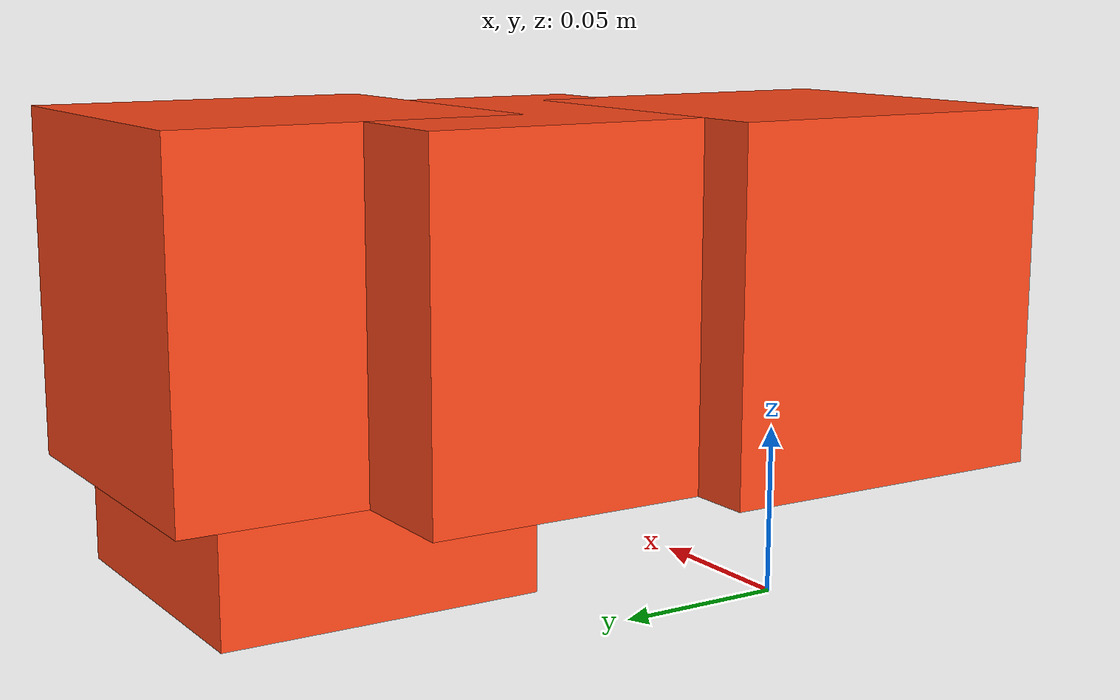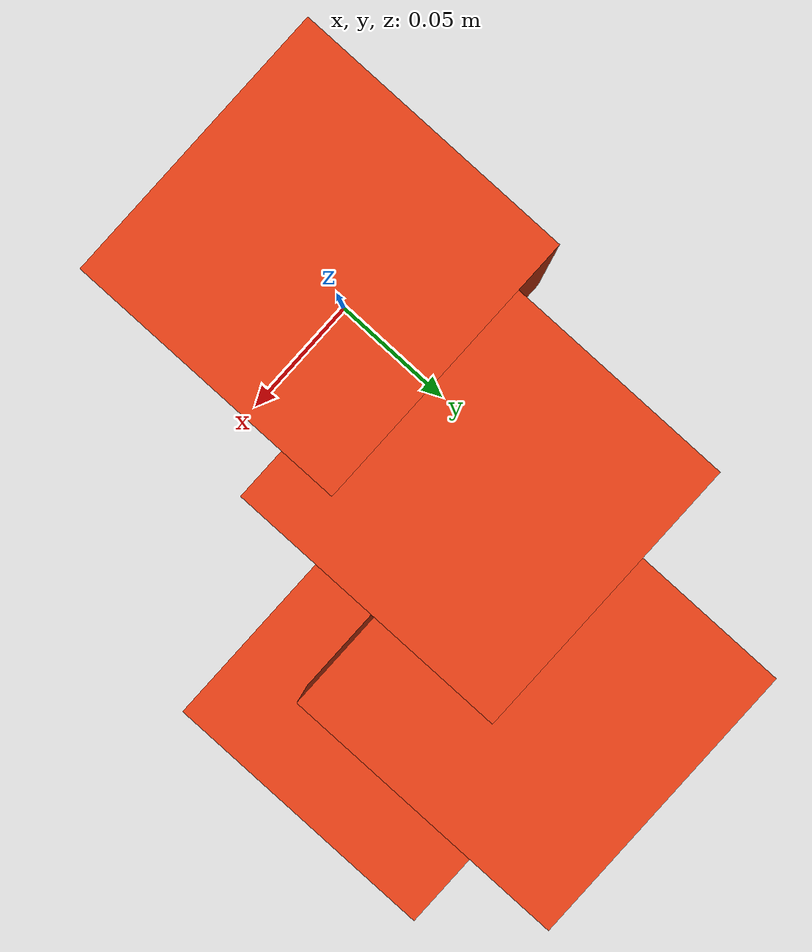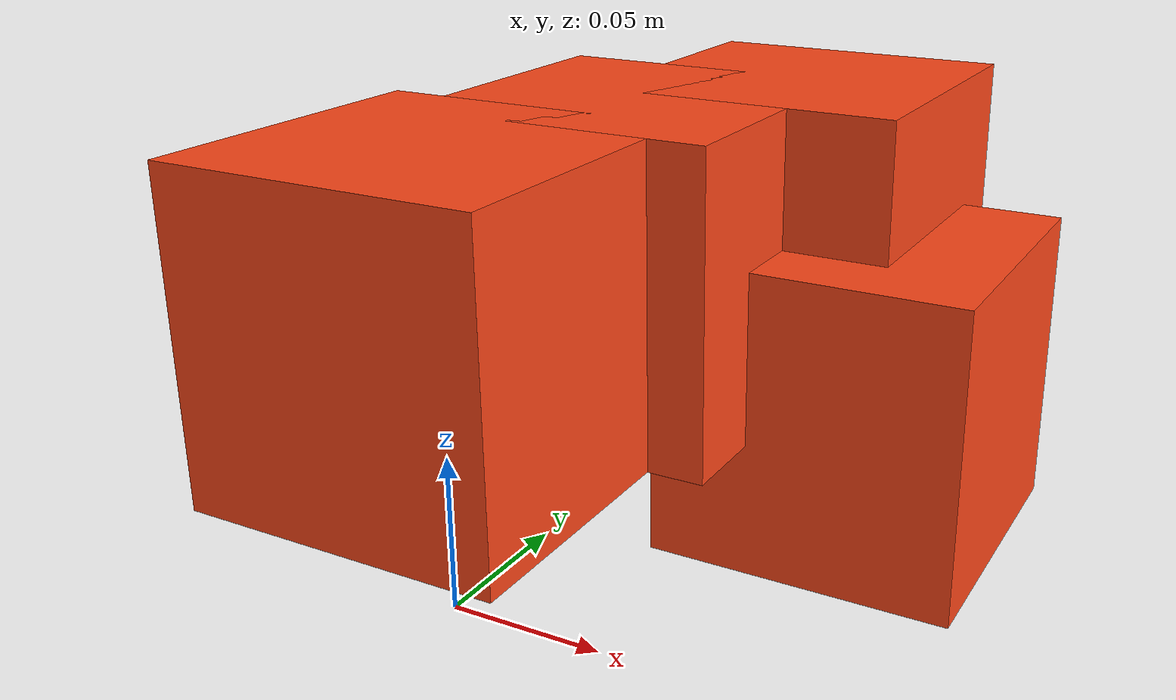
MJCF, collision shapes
<mujoco model="robot">
  <default>
    <default class="robot">
      <default class="motor">
        <joint />
        <motor />
      </default>
      <default class="visual">
        <geom material="visualgeom" contype="0" conaffinity="0" group="2" />
      </default>
      <default class="collision">
        <geom material="collision_material" condim="3" contype="0" conaffinity="1" priority="1" group="1" solref="0.005 1" solimp="0.99 0.999 1e-05" friction="1 0.01 0.01" />
      </default>
    </default>
  </default>

  <compiler angle="radian" />

  <asset>
    <material name="grey" rgba="0.5 0.5 0.5 1" />
    <material name="default_material" rgba="0.7 0.7 0.7 1" />
    <material name="collision_material" rgba="1.0 0.28 0.1 0.9" />
    <mesh name="base_link.step" file="meshes/base_link.step" />
    <mesh name="Hip_Left.step" file="meshes/Hip_Left.step" />
    <mesh name="Sartorius_Left_Upper.step" file="meshes/Sartorius_Left_Upper.step" />
    <mesh name="Knee_Left.step" file="meshes/Knee_Left.step" />
    <mesh name="Tendon_LT.step" file="meshes/Tendon_LT.step" />
  </asset>

  <worldbody>
    <body name="base_link" pos="0.00000000 0.00000000 0.09400000" quat="1 0 0 0" childclass="robot">
      <freejoint name="floating_base" />
      <geom name="base_link_collision" pos="0 0 0" quat="1.0 0.0 0.0 0.0" type="box" size="0.05 0.05 0.05" class="collision" />
      <geom name="base_link_visual" pos="0 0 0" quat="1.0 0.0 0.0 0.0" material="grey" type="mesh" mesh="base_link.step" scale="1 1 1" class="visual" />
      <body name="Hip_Left" pos="0.018 0.08 0" quat="1.0 0.0 0.0 0.0">
        <joint name="joint_Hip_Left" type="hinge" ref="0.0" class="motor" range="-3.141592653589793 3.141592653589793" axis="0 0 1" />
        <geom name="Hip_Left_collision" pos="0 0 0" quat="1.0 0.0 0.0 0.0" type="box" size="0.05 0.05 0.05" class="collision" />
        <geom name="Hip_Left_visual" pos="-0.018000000000000006 -0.08 0" quat="1.0 0.0 0.0 0.0" material="grey" type="mesh" mesh="Hip_Left.step" scale="1 1 1" class="visual" />
        <body name="Sartorius_Left_Upper" pos="0.034 0.053 0" quat="1.0 0.0 0.0 0.0">
          <joint name="joint_Sartorius_Left_Upper" type="hinge" ref="0.0" class="motor" range="-3.141592653589793 3.141592653589793" axis="1 0 0" />
          <geom name="Sartorius_Left_Upper_collision" pos="0 0 0" quat="1.0 0.0 0.0 0.0" type="box" size="0.05 0.05 0.05" class="collision" />
          <geom name="Sartorius_Left_Upper_visual" pos="-0.034 -0.053 0" quat="1.0 0.0 0.0 0.0" material="grey" type="mesh" mesh="Sartorius_Left_Upper.step" scale="1 1 1" class="visual" />
          <body name="Knee_Left" pos="0 0 0" quat="1.0 0.0 0.0 0.0">
            <joint name="joint_Knee_Left" type="hinge" ref="0.0" class="motor" range="-3.141592653589793 3.141592653589793" axis="1 0 0" />
            <geom name="Knee_Left_collision" pos="0 0 0" quat="1.0 0.0 0.0 0.0" type="box" size="0.05 0.05 0.05" class="collision" />
            <geom name="Knee_Left_visual" pos="0 0 0" quat="1.0 0.0 0.0 0.0" material="grey" type="mesh" mesh="Knee_Left.step" scale="1 1 1" class="visual" />
            <body name="Tendon_LT" pos="0.033 -0.024 -0.044" quat="1.0 0.0 0.0 0.0">
              <joint name="joint_Tendon_LT" type="hinge" ref="0.0" class="motor" range="-3.141592653589793 3.141592653589793" axis="1 0 0" />
              <geom name="Tendon_LT_collision" pos="0 0 0" quat="1.0 0.0 0.0 0.0" type="box" size="0.05 0.05 0.05" class="collision" />
              <geom name="Tendon_LT_visual" pos="-0.033 0.024 0.044" quat="1.0 0.0 0.0 0.0" material="grey" type="mesh" mesh="Tendon_LT.step" scale="1 1 1" class="visual" />
            </body>
          </body>
        </body>
      </body>
      <site name="base_link_site" pos="0 0 0" quat="1 0 0 0" />
      <camera name="front_camera" mode="track" fovy="90.0" quat="4.329780281177467e-17 4.329780281177466e-17 0.7071067811865475 0.7071067811865476" pos="0.0 2.0 0.5" />
      <camera name="side_camera" mode="track" fovy="90.0" quat="-0.5 -0.4999999999999999 0.5 0.5000000000000001" pos="-2.0 0.0 0.5" />
    </body>
  </worldbody>

  <actuator>
    <motor name="joint_Hip_Left_ctrl" joint="joint_Hip_Left" class="motor" />
    <motor name="joint_Sartorius_Left_Upper_ctrl" joint="joint_Sartorius_Left_Upper" class="motor" />
    <motor name="joint_Knee_Left_ctrl" joint="joint_Knee_Left" class="motor" />
    <motor name="joint_Tendon_LT_ctrl" joint="joint_Tendon_LT" class="motor" />
  </actuator>

  <contact>
    <exclude body1="base_link" body2="Hip_Left" />
    <exclude body1="Hip_Left" body2="Sartorius_Left_Upper" />
    <exclude body1="Sartorius_Left_Upper" body2="Knee_Left" />
    <exclude body1="Knee_Left" body2="Tendon_LT" />
  </contact>

  <sensor>
    <framepos name="base_link_site_pos" objtype="site" objname="base_link_site" />
    <framequat name="base_link_site_quat" objtype="site" objname="base_link_site" />
    <framelinvel name="base_link_site_linvel" objtype="site" objname="base_link_site" />
    <frameangvel name="base_link_site_angvel" objtype="site" objname="base_link_site" />
    <velocimeter name="base_link_site_vel" site="base_link_site" />
  </sensor>
</mujoco>
